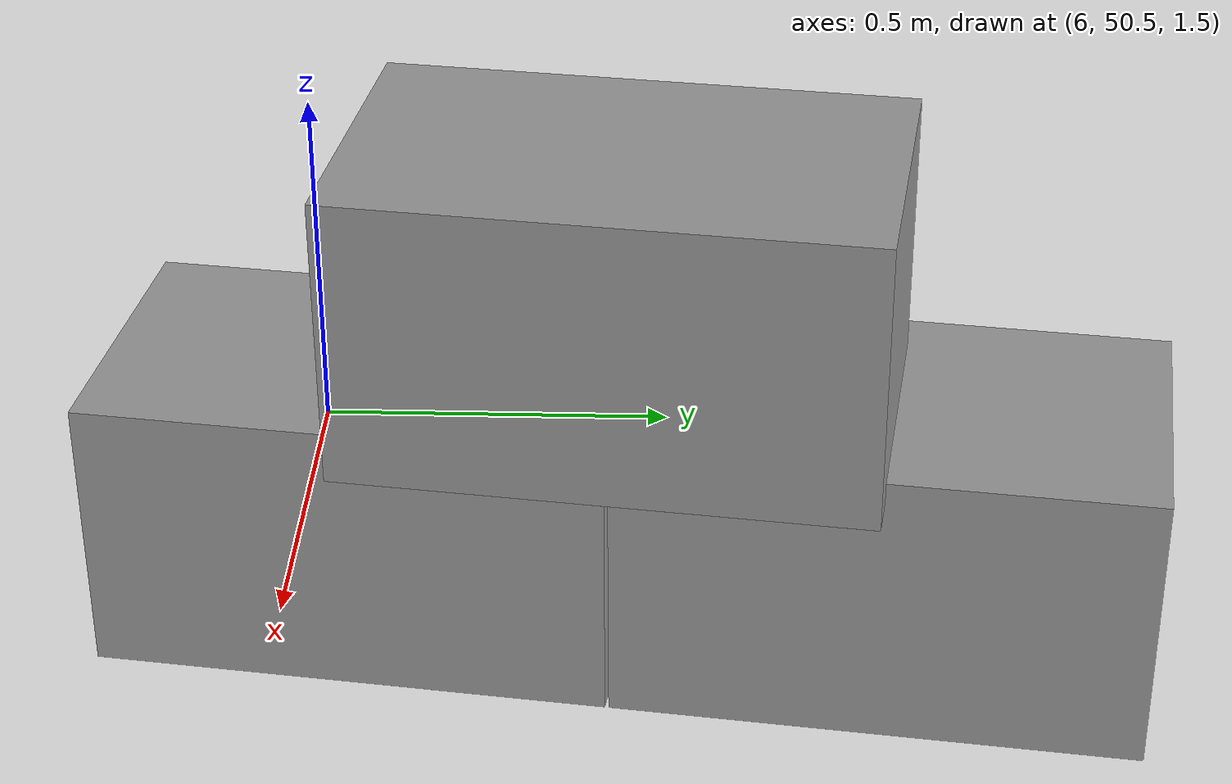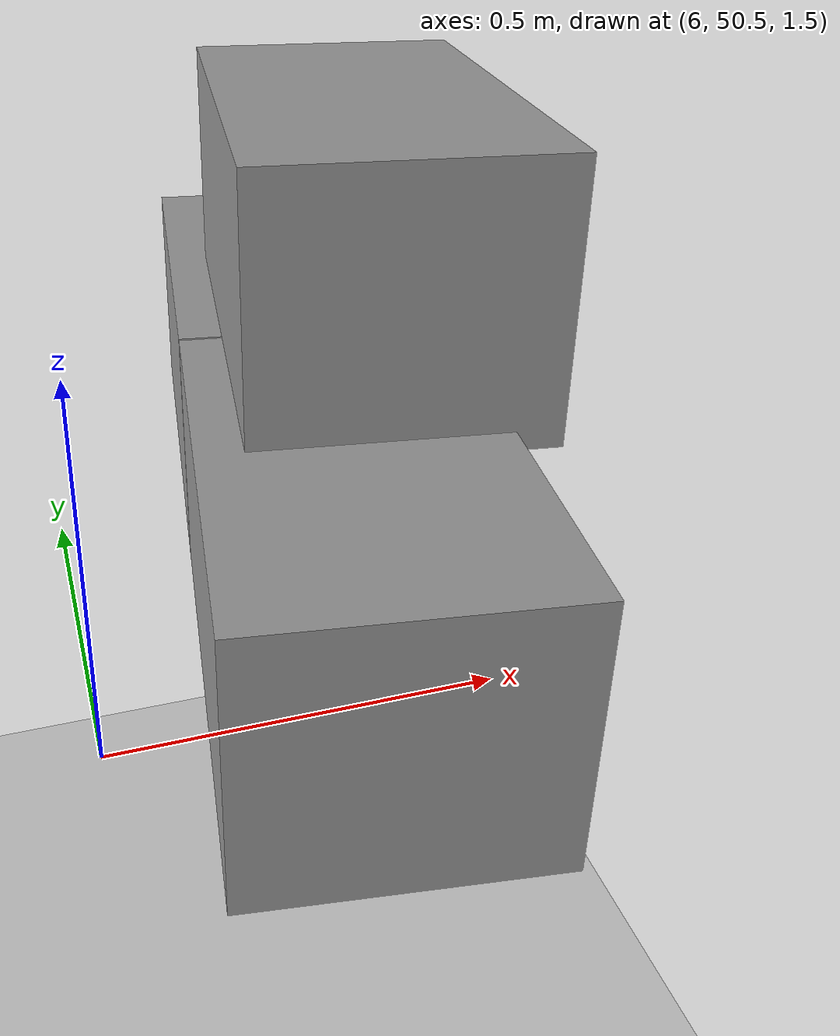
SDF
<sdf version="1.7">
 <world name="default">
  <model name="ground_plane">
   <static>1</static>
   <link name="link">
    <collision name="collision">
     <geometry><plane><normal>0 0 1</normal><size>100 100</size></plane></geometry>
     <surface>
      <contact><collide_bitmask>65535</collide_bitmask></contact>
      <friction><ode><mu>100</mu><mu2>50</mu2></ode></friction>
     </surface>
    </collision>
    <visual name="visual">
     <cast_shadows>0</cast_shadows>
     <geometry><plane><normal>0 0 1</normal><size>100 100</size></plane></geometry>
     <material>
      <script><uri>file://media/materials/scripts/gazebo.material</uri><name>Gazebo/Grey</name></script>
     </material>
    </visual>
   </link>
  </model>
  <model name="Add_Box_clone_clone_3_clone_2">
   <link name="link">
    <inertial>
     <mass>1</mass>
     <inertia>
      <ixx>0.166667</ixx>
      <ixy>0</ixy>
      <ixz>0</ixz>
      <iyy>0.166667</iyy>
      <iyz>0</iyz>
      <izz>0.166667</izz>
     </inertia>
    </inertial>
    <kinematic>1</kinematic>
    <gravity>0</gravity>
    <visual name="visual">
     <geometry><box><size>0.686 0.406 0.381</size></box></geometry>
     <material>
      <script><name>Gazebo/Grey</name><uri>file://media/materials/scripts/gazebo.material</uri></script>
      <shader type="pixel"><normal_map>__default__</normal_map></shader>
      <ambient>0.3 0.3 0.3 1</ambient>
      <diffuse>0.7 0.7 0.7 1</diffuse>
      <specular>0.01 0.01 0.01 1</specular>
      <emissive>0 0 0 1</emissive>
     </material>
    </visual>
    <collision name="collision">
     <geometry><box><size>1 1 1</size></box></geometry>
     <surface>
      <friction>
       <ode><mu>1</mu><mu2>1</mu2><fdir1>0 0 0</fdir1><slip1>0</slip1><slip2>0</slip2></ode>
       <torsional>
        <coefficient>1</coefficient>
        <patch_radius>0</patch_radius>
        <surface_radius>0</surface_radius>
        <use_patch_radius>1</use_patch_radius>
        <ode><slip>0</slip></ode>
       </torsional>
      </friction>
      <bounce><restitution_coefficient>0</restitution_coefficient><threshold>1e+06</threshold></bounce>
      <contact>
       <collide_without_contact>0</collide_without_contact>
       <collide_without_contact_bitmask>1</collide_without_contact_bitmask>
       <collide_bitmask>1</collide_bitmask>
       <ode>
        <soft_cfm>0</soft_cfm>
        <soft_erp>0.2</soft_erp>
        <kp>1e+13</kp>
        <kd>1</kd>
        <max_vel>0.01</max_vel>
        <min_depth>0</min_depth>
       </ode>
       <bullet>
        <split_impulse>1</split_impulse>
        <split_impulse_penetration_threshold>-0.01</split_impulse_penetration_threshold>
        <soft_cfm>0</soft_cfm>
        <soft_erp>0.2</soft_erp>
        <kp>1e+13</kp>
        <kd>1</kd>
       </bullet>
      </contact>
     </surface>
    </collision>
   </link>
   <link name="link_clone">
    <inertial>
     <mass>1</mass>
     <inertia>
      <ixx>0.166667</ixx>
      <ixy>0</ixy>
      <ixz>0</ixz>
      <iyy>0.166667</iyy>
      <iyz>0</iyz>
      <izz>0.166667</izz>
     </inertia>
    </inertial>
    <pose>-0.343354 -0.063316 0.354303 1e-05 -0 0</pose>
    <gravity>0</gravity>
    <visual name="visual">
     <geometry><box><size>0.686 0.406 0.381</size></box></geometry>
     <material>
      <script><name>Gazebo/Grey</name><uri>file://media/materials/scripts/gazebo.material</uri></script>
      <shader type="pixel"><normal_map>__default__</normal_map></shader>
      <ambient>0.3 0.3 0.3 1</ambient>
      <diffuse>0.7 0.7 0.7 1</diffuse>
      <specular>0.01 0.01 0.01 1</specular>
      <emissive>0 0 0 1</emissive>
     </material>
    </visual>
    <collision name="collision">
     <geometry><box><size>1 1 1</size></box></geometry>
     <surface>
      <friction>
       <ode><mu>1</mu><mu2>1</mu2><fdir1>0 0 0</fdir1><slip1>0</slip1><slip2>0</slip2></ode>
       <torsional>
        <coefficient>1</coefficient>
        <patch_radius>0</patch_radius>
        <surface_radius>0</surface_radius>
        <use_patch_radius>1</use_patch_radius>
        <ode><slip>0</slip></ode>
       </torsional>
      </friction>
      <bounce><restitution_coefficient>0</restitution_coefficient><threshold>1e+06</threshold></bounce>
      <contact>
       <collide_without_contact>0</collide_without_contact>
       <collide_without_contact_bitmask>1</collide_without_contact_bitmask>
       <collide_bitmask>1</collide_bitmask>
       <ode>
        <soft_cfm>0</soft_cfm>
        <soft_erp>0.2</soft_erp>
        <kp>1e+13</kp>
        <kd>1</kd>
        <max_vel>0.01</max_vel>
        <min_depth>0</min_depth>
       </ode>
       <bullet>
        <split_impulse>1</split_impulse>
        <split_impulse_penetration_threshold>-0.01</split_impulse_penetration_threshold>
        <soft_cfm>0</soft_cfm>
        <soft_erp>0.2</soft_erp>
        <kp>1e+13</kp>
        <kd>1</kd>
       </bullet>
      </contact>
     </surface>
    </collision>
   </link>
   <link name="link_clone_clone">
    <inertial>
     <mass>1</mass>
     <inertia>
      <ixx>0.166667</ixx>
      <ixy>0</ixy>
      <ixz>0</ixz>
      <iyy>0.166667</iyy>
      <iyz>0</iyz>
      <izz>0.166667</izz>
     </inertia>
    </inertial>
    <pose>-0.690786 -0.000183 -1e-05 2e-05 -0 0</pose>
    <gravity>0</gravity>
    <visual name="visual">
     <geometry><box><size>0.686 0.406 0.381</size></box></geometry>
     <material>
      <script><name>Gazebo/Grey</name><uri>file://media/materials/scripts/gazebo.material</uri></script>
      <shader type="pixel"><normal_map>__default__</normal_map></shader>
      <ambient>0.3 0.3 0.3 1</ambient>
      <diffuse>0.7 0.7 0.7 1</diffuse>
      <specular>0.01 0.01 0.01 1</specular>
      <emissive>0 0 0 1</emissive>
     </material>
    </visual>
    <collision name="collision">
     <geometry><box><size>1 1 1</size></box></geometry>
     <surface>
      <friction>
       <ode><mu>1</mu><mu2>1</mu2><fdir1>0 0 0</fdir1><slip1>0</slip1><slip2>0</slip2></ode>
       <torsional>
        <coefficient>1</coefficient>
        <patch_radius>0</patch_radius>
        <surface_radius>0</surface_radius>
        <use_patch_radius>1</use_patch_radius>
        <ode><slip>0</slip></ode>
       </torsional>
      </friction>
      <bounce><restitution_coefficient>0</restitution_coefficient><threshold>1e+06</threshold></bounce>
      <contact>
       <collide_without_contact>0</collide_without_contact>
       <collide_without_contact_bitmask>1</collide_without_contact_bitmask>
       <collide_bitmask>1</collide_bitmask>
       <ode>
        <soft_cfm>0</soft_cfm>
        <soft_erp>0.2</soft_erp>
        <kp>1e+13</kp>
        <kd>1</kd>
        <max_vel>0.01</max_vel>
        <min_depth>0</min_depth>
       </ode>
       <bullet>
        <split_impulse>1</split_impulse>
        <split_impulse_penetration_threshold>-0.01</split_impulse_penetration_threshold>
        <soft_cfm>0</soft_cfm>
        <soft_erp>0.2</soft_erp>
        <kp>1e+13</kp>
        <kd>1</kd>
       </bullet>
      </contact>
     </surface>
    </collision>
   </link>
   <static>0</static>
   <pose>6.44279 51.303 1.61518 0 -0 1.4402</pose>
  </model>
 </world>
</sdf>
